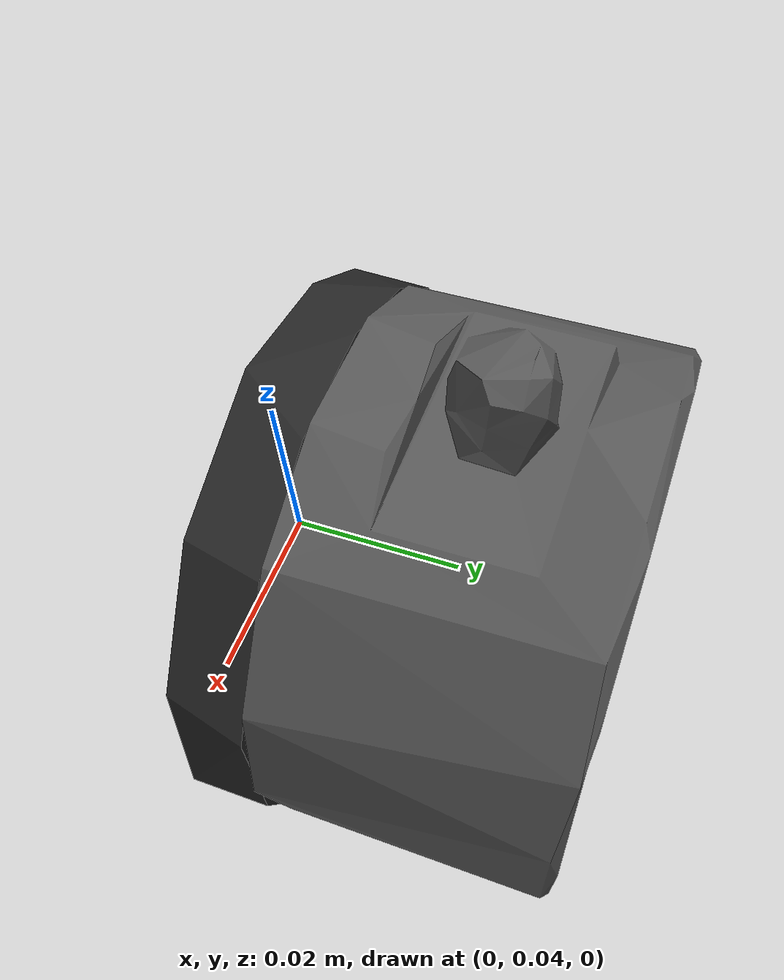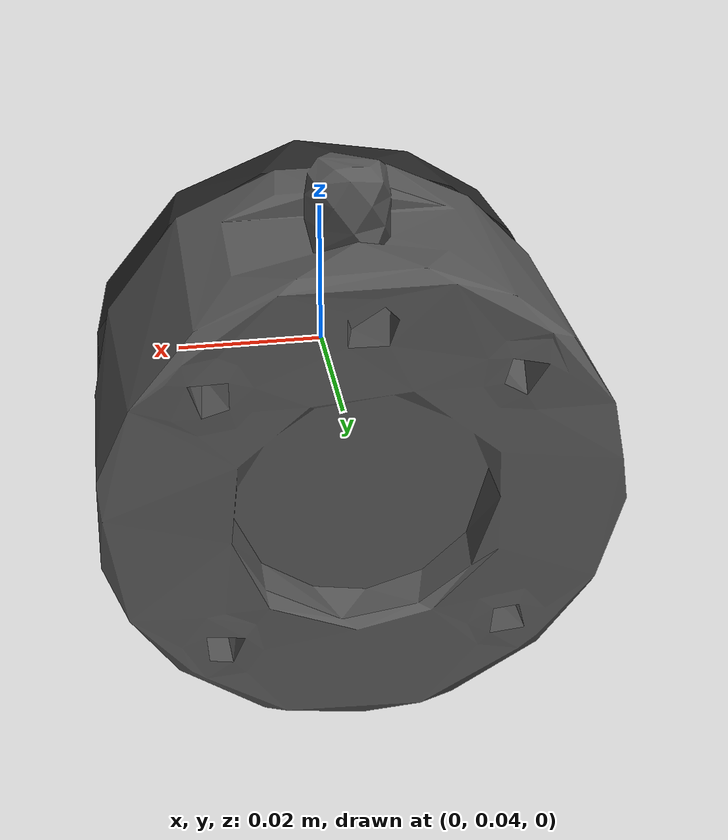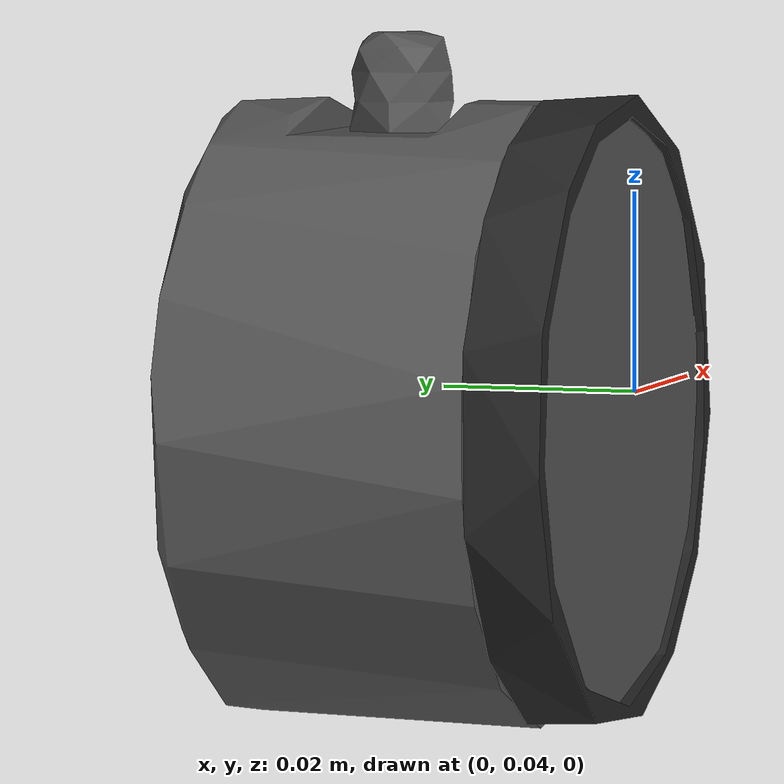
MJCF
<mujoco model="wrist3">
  <default>
    <default class="visual">
      <geom group="2" type="mesh" contype="0" conaffinity="0"/>
    </default>
    <default class="collision">
      <geom group="3" type="mesh"/>
    </default>
  </default>
  <asset>
    <material name="Rohr.001" specular="0.5" shininess="0.25" rgba="0.335872 0.335872 0.335872 1.000000"/>
    <material name="verbindung.002" specular="0.5" shininess="0.25" rgba="0.142720 0.142720 0.142720 1.000000"/>
    <mesh file="wrist3_0.obj"/>
    <mesh file="wrist3_1.obj"/>
  </asset>
  <worldbody>
    <body name="wrist3">
      <geom mesh="wrist3_0" material="verbindung.002" class="visual"/>
      <geom mesh="wrist3_1" material="Rohr.001" class="visual"/>
      <geom mesh="wrist3_0" class="collision"/>
      <geom mesh="wrist3_1" class="collision"/>
    </body>
  </worldbody>
</mujoco>
